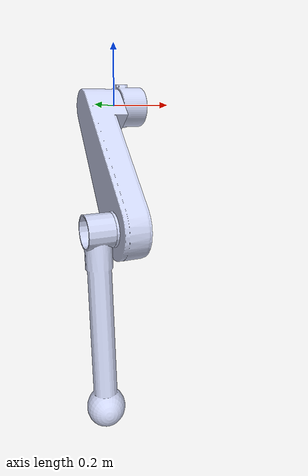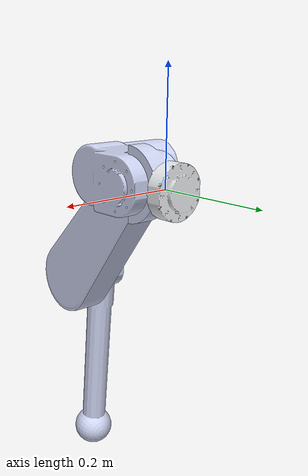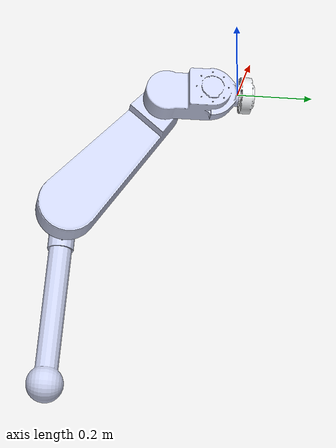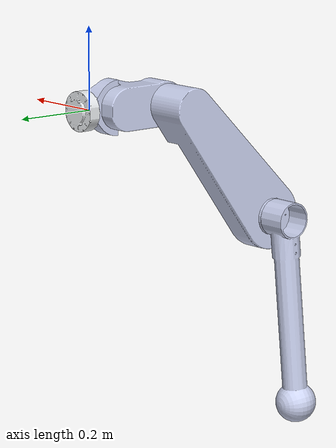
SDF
<?xml version="1.0" ?>
<sdf version="1.11">
  <model name="Pata_URDF">
    <pose>0 0 0 0 0 0</pose>
    <static>false</static>
    <link name="base_link">
      <inertial>
        <pose>-1.1083E-05 -0.00011256 -0.02069 0 0 0</pose>
        <mass>0.53</mass>
        <inertia>
          <ixx>1.5217E-07</ixx>
          <ixy>-7.503E-11</ixy>
          <ixz>-4.6807E-11</ixz>
          <iyy>1.472E-07</iyy>
          <iyz>-4.7572E-10</iyz>
          <izz>2.4922E-07</izz>
        </inertia>
      </inertial>
      <visual name="base_link_visual_0">
        <pose>0 0 0 0 0 0</pose>
        <geometry>
          <mesh>
            <uri>model://Pata_URDF/meshes/base_link.STL</uri>
          </mesh>
        </geometry>
        <material>
          <ambient>0.90196 0.91373 0.92549 1</ambient>
          <diffuse>0.90196 0.91373 0.92549 1</diffuse>
          <specular>0 0 0 1</specular>
          <emissive>0 0 0 1</emissive>
        </material>
      </visual>
      <collision name="base_link_collision_0">
        <pose>0 0 0 0 0 0</pose>
        <geometry>
          <mesh>
            <uri>model://Pata_URDF/meshes/col_base_link.STL</uri>
          </mesh>
        </geometry>
      </collision>
    </link>
    <link name="Link_1">
      <pose relative_to="Joint_1">0 0 0 0 0 0</pose>
      <inertial>
        <pose>-0.0053742 -2.5859E-05 0.12078 0 0 0</pose>
        <mass>2</mass>
        <inertia>
          <ixx>0.0058996</ixx>
          <ixy>1.3959E-06</ixy>
          <ixz>0.0010435</ixz>
          <iyy>0.0059473</iyy>
          <iyz>-1.415E-06</iyz>
          <izz>0.0018149</izz>
        </inertia>
      </inertial>
      <visual name="Link_1_visual_0">
        <pose>0 0 0 0 0 0</pose>
        <geometry>
          <mesh>
            <uri>model://Pata_URDF/meshes/Link_1.STL</uri>
          </mesh>
        </geometry>
        <material>
          <ambient>0.79216 0.81961 0.93333 1</ambient>
          <diffuse>0.79216 0.81961 0.93333 1</diffuse>
          <specular>0 0 0 1</specular>
          <emissive>0 0 0 1</emissive>
        </material>
      </visual>
      <collision name="Link_1_collision_0">
        <pose>0 0 0 0 0 0</pose>
        <geometry>
          <mesh>
            <uri>model://Pata_URDF/meshes/col_Link_1.STL</uri>
          </mesh>
        </geometry>
      </collision>
    </link>
    <link name="Link_2">
      <pose relative_to="Joint_2">0 0 0 0 0 0</pose>
      <inertial>
        <pose>0.23922 -2.8414E-05 0.056715 0 0 0</pose>
        <mass>2</mass>
        <inertia>
          <ixx>0.0028089</ixx>
          <ixy>-5.4172E-06</ixy>
          <ixz>-0.003285</ixz>
          <iyy>0.042002</iyy>
          <iyz>-1.5204E-06</iyz>
          <izz>0.042612</izz>
        </inertia>
      </inertial>
      <visual name="Link_2_visual_0">
        <pose>0 0 0 0 0 0</pose>
        <geometry>
          <mesh>
            <uri>model://Pata_URDF/meshes/Link_2.STL</uri>
          </mesh>
        </geometry>
        <material>
          <ambient>0.79216 0.81961 0.93333 1</ambient>
          <diffuse>0.79216 0.81961 0.93333 1</diffuse>
          <specular>0 0 0 1</specular>
          <emissive>0 0 0 1</emissive>
        </material>
      </visual>
      <collision name="Link_2_collision_0">
        <pose>0 0 0 0 0 0</pose>
        <geometry>
          <mesh>
            <uri>model://Pata_URDF/meshes/col_Link_2.STL</uri>
          </mesh>
        </geometry>
      </collision>
    </link>
    <link name="Link_3">
      <pose relative_to="Joint_3">0 0 0 0 0 0</pose>
      <inertial>
        <pose>-0.29681 1.0191E-07 0.03314 0 0 0</pose>
        <mass>1</mass>
        <inertia>
          <ixx>0.00093021</ixx>
          <ixy>-2.8962E-08</ixy>
          <ixz>0.00046128</ixz>
          <iyy>0.031543</iyy>
          <iyz>5.0071E-09</iyz>
          <izz>0.031568</izz>
        </inertia>
      </inertial>
      <visual name="Link_3_visual_0">
        <pose>0 0 0 0 0 0</pose>
        <geometry>
          <mesh>
            <uri>model://Pata_URDF/meshes/Link_3.STL</uri>
          </mesh>
        </geometry>
        <material>
          <ambient>0.79216 0.81961 0.93333 1</ambient>
          <diffuse>0.79216 0.81961 0.93333 1</diffuse>
          <specular>0 0 0 1</specular>
          <emissive>0 0 0 1</emissive>
        </material>
      </visual>
      <collision name="Link_3_collision_0">
        <pose>0 0 0 0 0 0</pose>
        <geometry>
          <mesh>
            <uri>model://Pata_URDF/meshes/col_Link_3.STL</uri>
          </mesh>
        </geometry>
      </collision>
    </link>
    <joint name="Joint_1" type="revolute">
      <parent>base_link</parent>
      <child>Link_1</child>
      <pose relative_to="base_link">0 0 0 1.5708 0 0</pose>
      <axis>
        <xyz>0 0 1</xyz>
        <limit>
          <lower>0</lower>
          <upper>3.1416</upper>
          <effort>23.7</effort>
          <velocity>30</velocity>
        </limit>
      </axis>
    </joint>
    <joint name="Joint_2" type="revolute">
      <parent>Link_1</parent>
      <child>Link_2</child>
      <pose relative_to="Link_1">-0.06155 0 0.18861 1.5708 -0.70726 -1.5708</pose>
      <axis>
        <xyz>0 0 -1</xyz>
        <limit>
          <lower>-3.1416</lower>
          <upper>1.5708</upper>
          <effort>49</effort>
          <velocity>15</velocity>
        </limit>
      </axis>
    </joint>
    <joint name="Joint_3" type="revolute">
      <parent>Link_2</parent>
      <child>Link_3</child>
      <pose relative_to="Link_2">0.38113 0 0.1128 0 0 2.5303</pose>
      <axis>
        <xyz>0 0 -1</xyz>
        <limit>
          <lower>-3.1416</lower>
          <upper>3.1416</upper>
          <effort>29</effort>
          <velocity>10</velocity>
        </limit>
      </axis>
    </joint>
    <plugin filename="gz-sim-joint-position-controller-system" name="gz::sim::systems::JointPositionController">
      <joint_name>Joint_1</joint_name>
      <p_gain>10.0</p_gain>
      <i_gain>0.0</i_gain>
      <d_gain>0.5</d_gain>
      <cmd_min>0</cmd_min>
      <cmd_max>3.1416</cmd_max>
    </plugin>
    <plugin filename="gz-sim-joint-position-controller-system" name="gz::sim::systems::JointPositionController">
      <joint_name>Joint_2</joint_name>
      <p_gain>10.0</p_gain>
      <i_gain>0.0</i_gain>
      <d_gain>0.5</d_gain>
      <cmd_min>-3.1416</cmd_min>
      <cmd_max>1.5708</cmd_max>
    </plugin>
    <plugin filename="gz-sim-joint-position-controller-system" name="gz::sim::systems::JointPositionController">
      <joint_name>Joint_3</joint_name>
      <p_gain>10.0</p_gain>
      <i_gain>0.0</i_gain>
      <d_gain>0.5</d_gain>
      <cmd_min>-3.1416</cmd_min>
      <cmd_max>3.1416</cmd_max>
    </plugin>
  </model>
</sdf>
